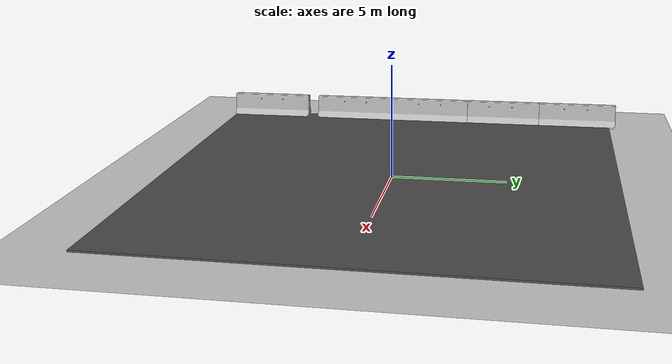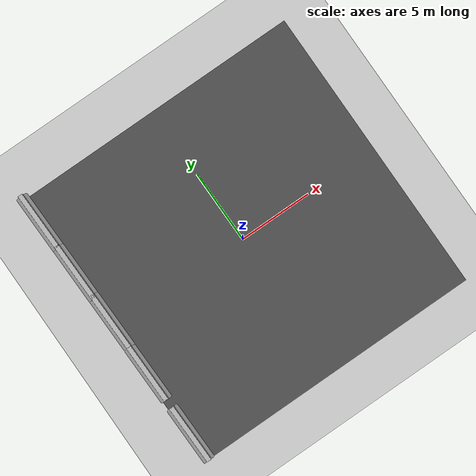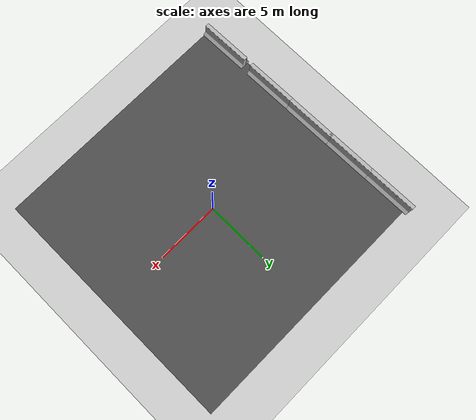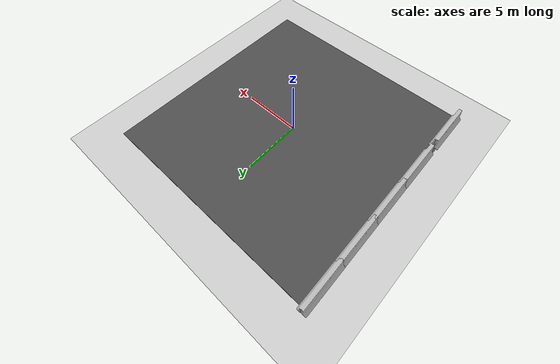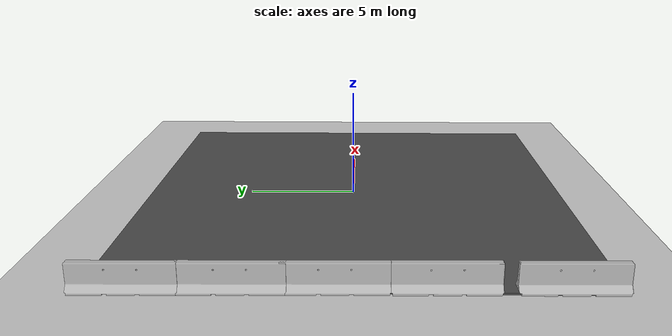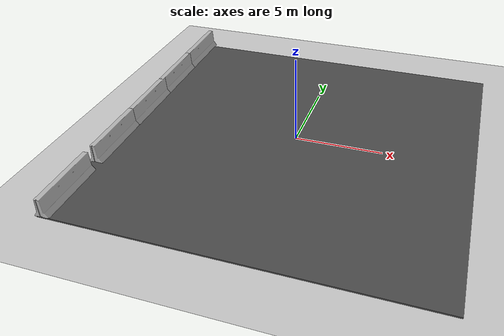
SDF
<sdf version="1.6">
 <world name="default">
  <model name="ground_plane">
   <static>1</static>
   <link name="link">
    <collision name="collision">
     <geometry><plane><normal>0 0 1</normal><size>100 100</size></plane></geometry>
     <surface><friction><ode><mu>100</mu><mu2>50</mu2></ode></friction></surface>
    </collision>
    <visual name="visual">
     <cast_shadows>0</cast_shadows>
     <geometry><plane><normal>0 0 1</normal><size>100 100</size></plane></geometry>
     <material>
      <script><uri>file://media/materials/scripts/gazebo.material</uri><name>Gazebo/Grey</name></script>
     </material>
    </visual>
    <velocity_decay><linear>0</linear><angular>0</angular></velocity_decay>
   </link>
  </model>
  <model name="asphalt_plane">
   <static>1</static>
   <link name="link">
    <collision name="collision"><geometry><box><size>20 20 0.1</size></box></geometry></collision>
    <visual name="visual">
     <cast_shadows>0</cast_shadows>
     <geometry><box><size>20 20 0.1</size></box></geometry>
     <material>
      <script>
       <uri>model://asphalt_plane/materials/scripts</uri>
       <uri>model://asphalt_plane/materials/textures</uri>
       <name>vrc/asphalt</name>
      </script>
     </material>
    </visual>
    <velocity_decay><linear>0</linear><angular>0</angular></velocity_decay>
   </link>
   <pose>0.076733 -0.110379 0 0 -0 0</pose>
  </model>
  <model name="jersey_barrier_8">
   <link name="link">
    <pose>-0.727355 1.16834 0 0 -0 1.58626</pose>
    <visual name="visual">
     <geometry><mesh><uri>model://jersey_barrier/meshes/jersey_barrier.dae</uri></mesh></geometry>
     <material><shader type="pixel"/></material>
    </visual>
    <collision name="upright">
     <pose>0 0 0.5715 0 -0 0</pose>
     <geometry><box><size>4.06542 0.3063 1.143</size></box></geometry>
     <surface>
      <friction>
       <ode><mu>1</mu><mu2>1</mu2><fdir1>0 0 0</fdir1><slip1>0</slip1><slip2>0</slip2></ode>
       <torsional>
        <coefficient>1</coefficient>
        <patch_radius>0</patch_radius>
        <surface_radius>0</surface_radius>
        <use_patch_radius>1</use_patch_radius>
        <ode><slip>0</slip></ode>
       </torsional>
      </friction>
      <bounce><restitution_coefficient>0</restitution_coefficient><threshold>1e+06</threshold></bounce>
      <contact>
       <collide_without_contact>0</collide_without_contact>
       <collide_without_contact_bitmask>1</collide_without_contact_bitmask>
       <collide_bitmask>1</collide_bitmask>
       <ode>
        <soft_cfm>0</soft_cfm>
        <soft_erp>0.2</soft_erp>
        <kp>1e+13</kp>
        <kd>1</kd>
        <max_vel>0.01</max_vel>
        <min_depth>0</min_depth>
       </ode>
       <bullet>
        <split_impulse>1</split_impulse>
        <split_impulse_penetration_threshold>-0.01</split_impulse_penetration_threshold>
        <soft_cfm>0</soft_cfm>
        <soft_erp>0.2</soft_erp>
        <kp>1e+13</kp>
        <kd>1</kd>
       </bullet>
      </contact>
     </surface>
    </collision>
    <collision name="base">
     <pose>0 0 0.032258 0 -0 0</pose>
     <geometry><box><size>4.06542 0.8107 0.064516</size></box></geometry>
     <surface>
      <friction>
       <ode><mu>1</mu><mu2>1</mu2><fdir1>0 0 0</fdir1><slip1>0</slip1><slip2>0</slip2></ode>
       <torsional>
        <coefficient>1</coefficient>
        <patch_radius>0</patch_radius>
        <surface_radius>0</surface_radius>
        <use_patch_radius>1</use_patch_radius>
        <ode><slip>0</slip></ode>
       </torsional>
      </friction>
      <bounce><restitution_coefficient>0</restitution_coefficient><threshold>1e+06</threshold></bounce>
      <contact>
       <collide_without_contact>0</collide_without_contact>
       <collide_without_contact_bitmask>1</collide_without_contact_bitmask>
       <collide_bitmask>1</collide_bitmask>
       <ode>
        <soft_cfm>0</soft_cfm>
        <soft_erp>0.2</soft_erp>
        <kp>1e+13</kp>
        <kd>1</kd>
        <max_vel>0.01</max_vel>
        <min_depth>0</min_depth>
       </ode>
       <bullet>
        <split_impulse>1</split_impulse>
        <split_impulse_penetration_threshold>-0.01</split_impulse_penetration_threshold>
        <soft_cfm>0</soft_cfm>
        <soft_erp>0.2</soft_erp>
        <kp>1e+13</kp>
        <kd>1</kd>
       </bullet>
      </contact>
     </surface>
    </collision>
    <collision name="base2">
     <pose>0 0 0.1 0 -0 0</pose>
     <geometry><box><size>4.06542 0.65 0.1</size></box></geometry>
     <surface>
      <friction>
       <ode><mu>1</mu><mu2>1</mu2><fdir1>0 0 0</fdir1><slip1>0</slip1><slip2>0</slip2></ode>
       <torsional>
        <coefficient>1</coefficient>
        <patch_radius>0</patch_radius>
        <surface_radius>0</surface_radius>
        <use_patch_radius>1</use_patch_radius>
        <ode><slip>0</slip></ode>
       </torsional>
      </friction>
      <bounce><restitution_coefficient>0</restitution_coefficient><threshold>1e+06</threshold></bounce>
      <contact>
       <collide_without_contact>0</collide_without_contact>
       <collide_without_contact_bitmask>1</collide_without_contact_bitmask>
       <collide_bitmask>1</collide_bitmask>
       <ode>
        <soft_cfm>0</soft_cfm>
        <soft_erp>0.2</soft_erp>
        <kp>1e+13</kp>
        <kd>1</kd>
        <max_vel>0.01</max_vel>
        <min_depth>0</min_depth>
       </ode>
       <bullet>
        <split_impulse>1</split_impulse>
        <split_impulse_penetration_threshold>-0.01</split_impulse_penetration_threshold>
        <soft_cfm>0</soft_cfm>
        <soft_erp>0.2</soft_erp>
        <kp>1e+13</kp>
        <kd>1</kd>
       </bullet>
      </contact>
     </surface>
    </collision>
    <collision name="base3">
     <pose>0 0 0.2 0 -0 0</pose>
     <geometry><box><size>4.06542 0.5 0.1</size></box></geometry>
     <surface>
      <friction>
       <ode><mu>1</mu><mu2>1</mu2><fdir1>0 0 0</fdir1><slip1>0</slip1><slip2>0</slip2></ode>
       <torsional>
        <coefficient>1</coefficient>
        <patch_radius>0</patch_radius>
        <surface_radius>0</surface_radius>
        <use_patch_radius>1</use_patch_radius>
        <ode><slip>0</slip></ode>
       </torsional>
      </friction>
      <bounce><restitution_coefficient>0</restitution_coefficient><threshold>1e+06</threshold></bounce>
      <contact>
       <collide_without_contact>0</collide_without_contact>
       <collide_without_contact_bitmask>1</collide_without_contact_bitmask>
       <collide_bitmask>1</collide_bitmask>
       <ode>
        <soft_cfm>0</soft_cfm>
        <soft_erp>0.2</soft_erp>
        <kp>1e+13</kp>
        <kd>1</kd>
        <max_vel>0.01</max_vel>
        <min_depth>0</min_depth>
       </ode>
       <bullet>
        <split_impulse>1</split_impulse>
        <split_impulse_penetration_threshold>-0.01</split_impulse_penetration_threshold>
        <soft_cfm>0</soft_cfm>
        <soft_erp>0.2</soft_erp>
        <kp>1e+13</kp>
        <kd>1</kd>
       </bullet>
      </contact>
     </surface>
    </collision>
    <collision name="left-angle">
     <pose>0 -0.224 0.2401 0.9 -0 0</pose>
     <geometry><box><size>4.06542 0.5 0.064516</size></box></geometry>
     <surface>
      <friction>
       <ode><mu>1</mu><mu2>1</mu2><fdir1>0 0 0</fdir1><slip1>0</slip1><slip2>0</slip2></ode>
       <torsional>
        <coefficient>1</coefficient>
        <patch_radius>0</patch_radius>
        <surface_radius>0</surface_radius>
        <use_patch_radius>1</use_patch_radius>
        <ode><slip>0</slip></ode>
       </torsional>
      </friction>
      <bounce><restitution_coefficient>0</restitution_coefficient><threshold>1e+06</threshold></bounce>
      <contact>
       <collide_without_contact>0</collide_without_contact>
       <collide_without_contact_bitmask>1</collide_without_contact_bitmask>
       <collide_bitmask>1</collide_bitmask>
       <ode>
        <soft_cfm>0</soft_cfm>
        <soft_erp>0.2</soft_erp>
        <kp>1e+13</kp>
        <kd>1</kd>
        <max_vel>0.01</max_vel>
        <min_depth>0</min_depth>
       </ode>
       <bullet>
        <split_impulse>1</split_impulse>
        <split_impulse_penetration_threshold>-0.01</split_impulse_penetration_threshold>
        <soft_cfm>0</soft_cfm>
        <soft_erp>0.2</soft_erp>
        <kp>1e+13</kp>
        <kd>1</kd>
       </bullet>
      </contact>
     </surface>
    </collision>
    <collision name="right-angle">
     <pose>0 0.224 0.2401 -0.9 0 0</pose>
     <geometry><box><size>4.06542 0.5 0.064516</size></box></geometry>
     <surface>
      <friction>
       <ode><mu>1</mu><mu2>1</mu2><fdir1>0 0 0</fdir1><slip1>0</slip1><slip2>0</slip2></ode>
       <torsional>
        <coefficient>1</coefficient>
        <patch_radius>0</patch_radius>
        <surface_radius>0</surface_radius>
        <use_patch_radius>1</use_patch_radius>
        <ode><slip>0</slip></ode>
       </torsional>
      </friction>
      <bounce><restitution_coefficient>0</restitution_coefficient><threshold>1e+06</threshold></bounce>
      <contact>
       <collide_without_contact>0</collide_without_contact>
       <collide_without_contact_bitmask>1</collide_without_contact_bitmask>
       <collide_bitmask>1</collide_bitmask>
       <ode>
        <soft_cfm>0</soft_cfm>
        <soft_erp>0.2</soft_erp>
        <kp>1e+13</kp>
        <kd>1</kd>
        <max_vel>0.01</max_vel>
        <min_depth>0</min_depth>
       </ode>
       <bullet>
        <split_impulse>1</split_impulse>
        <split_impulse_penetration_threshold>-0.01</split_impulse_penetration_threshold>
        <soft_cfm>0</soft_cfm>
        <soft_erp>0.2</soft_erp>
        <kp>1e+13</kp>
        <kd>1</kd>
       </bullet>
      </contact>
     </surface>
    </collision>
   </link>
   <static>1</static>
   <pose>-9.12908 6.99437 0 0 -0 0</pose>
  </model>
  <model name="jersey_barrier_8_clone">
   <link name="link">
    <pose>-0.727355 1.16834 0 0 -0 1.58626</pose>
    <visual name="visual">
     <geometry><mesh><uri>model://jersey_barrier/meshes/jersey_barrier.dae</uri></mesh></geometry>
     <material><shader type="pixel"/></material>
    </visual>
    <collision name="upright">
     <pose>0 0 0.5715 0 -0 0</pose>
     <geometry><box><size>4.06542 0.3063 1.143</size></box></geometry>
     <surface>
      <friction>
       <ode><mu>1</mu><mu2>1</mu2><fdir1>0 0 0</fdir1><slip1>0</slip1><slip2>0</slip2></ode>
       <torsional>
        <coefficient>1</coefficient>
        <patch_radius>0</patch_radius>
        <surface_radius>0</surface_radius>
        <use_patch_radius>1</use_patch_radius>
        <ode><slip>0</slip></ode>
       </torsional>
      </friction>
      <bounce><restitution_coefficient>0</restitution_coefficient><threshold>1e+06</threshold></bounce>
      <contact>
       <collide_without_contact>0</collide_without_contact>
       <collide_without_contact_bitmask>1</collide_without_contact_bitmask>
       <collide_bitmask>1</collide_bitmask>
       <ode>
        <soft_cfm>0</soft_cfm>
        <soft_erp>0.2</soft_erp>
        <kp>1e+13</kp>
        <kd>1</kd>
        <max_vel>0.01</max_vel>
        <min_depth>0</min_depth>
       </ode>
       <bullet>
        <split_impulse>1</split_impulse>
        <split_impulse_penetration_threshold>-0.01</split_impulse_penetration_threshold>
        <soft_cfm>0</soft_cfm>
        <soft_erp>0.2</soft_erp>
        <kp>1e+13</kp>
        <kd>1</kd>
       </bullet>
      </contact>
     </surface>
    </collision>
    <collision name="base">
     <pose>0 0 0.032258 0 -0 0</pose>
     <geometry><box><size>4.06542 0.8107 0.064516</size></box></geometry>
     <surface>
      <friction>
       <ode><mu>1</mu><mu2>1</mu2><fdir1>0 0 0</fdir1><slip1>0</slip1><slip2>0</slip2></ode>
       <torsional>
        <coefficient>1</coefficient>
        <patch_radius>0</patch_radius>
        <surface_radius>0</surface_radius>
        <use_patch_radius>1</use_patch_radius>
        <ode><slip>0</slip></ode>
       </torsional>
      </friction>
      <bounce><restitution_coefficient>0</restitution_coefficient><threshold>1e+06</threshold></bounce>
      <contact>
       <collide_without_contact>0</collide_without_contact>
       <collide_without_contact_bitmask>1</collide_without_contact_bitmask>
       <collide_bitmask>1</collide_bitmask>
       <ode>
        <soft_cfm>0</soft_cfm>
        <soft_erp>0.2</soft_erp>
        <kp>1e+13</kp>
        <kd>1</kd>
        <max_vel>0.01</max_vel>
        <min_depth>0</min_depth>
       </ode>
       <bullet>
        <split_impulse>1</split_impulse>
        <split_impulse_penetration_threshold>-0.01</split_impulse_penetration_threshold>
        <soft_cfm>0</soft_cfm>
        <soft_erp>0.2</soft_erp>
        <kp>1e+13</kp>
        <kd>1</kd>
       </bullet>
      </contact>
     </surface>
    </collision>
    <collision name="base2">
     <pose>0 0 0.1 0 -0 0</pose>
     <geometry><box><size>4.06542 0.65 0.1</size></box></geometry>
     <surface>
      <friction>
       <ode><mu>1</mu><mu2>1</mu2><fdir1>0 0 0</fdir1><slip1>0</slip1><slip2>0</slip2></ode>
       <torsional>
        <coefficient>1</coefficient>
        <patch_radius>0</patch_radius>
        <surface_radius>0</surface_radius>
        <use_patch_radius>1</use_patch_radius>
        <ode><slip>0</slip></ode>
       </torsional>
      </friction>
      <bounce><restitution_coefficient>0</restitution_coefficient><threshold>1e+06</threshold></bounce>
      <contact>
       <collide_without_contact>0</collide_without_contact>
       <collide_without_contact_bitmask>1</collide_without_contact_bitmask>
       <collide_bitmask>1</collide_bitmask>
       <ode>
        <soft_cfm>0</soft_cfm>
        <soft_erp>0.2</soft_erp>
        <kp>1e+13</kp>
        <kd>1</kd>
        <max_vel>0.01</max_vel>
        <min_depth>0</min_depth>
       </ode>
       <bullet>
        <split_impulse>1</split_impulse>
        <split_impulse_penetration_threshold>-0.01</split_impulse_penetration_threshold>
        <soft_cfm>0</soft_cfm>
        <soft_erp>0.2</soft_erp>
        <kp>1e+13</kp>
        <kd>1</kd>
       </bullet>
      </contact>
     </surface>
    </collision>
    <collision name="base3">
     <pose>0 0 0.2 0 -0 0</pose>
     <geometry><box><size>4.06542 0.5 0.1</size></box></geometry>
     <surface>
      <friction>
       <ode><mu>1</mu><mu2>1</mu2><fdir1>0 0 0</fdir1><slip1>0</slip1><slip2>0</slip2></ode>
       <torsional>
        <coefficient>1</coefficient>
        <patch_radius>0</patch_radius>
        <surface_radius>0</surface_radius>
        <use_patch_radius>1</use_patch_radius>
        <ode><slip>0</slip></ode>
       </torsional>
      </friction>
      <bounce><restitution_coefficient>0</restitution_coefficient><threshold>1e+06</threshold></bounce>
      <contact>
       <collide_without_contact>0</collide_without_contact>
       <collide_without_contact_bitmask>1</collide_without_contact_bitmask>
       <collide_bitmask>1</collide_bitmask>
       <ode>
        <soft_cfm>0</soft_cfm>
        <soft_erp>0.2</soft_erp>
        <kp>1e+13</kp>
        <kd>1</kd>
        <max_vel>0.01</max_vel>
        <min_depth>0</min_depth>
       </ode>
       <bullet>
        <split_impulse>1</split_impulse>
        <split_impulse_penetration_threshold>-0.01</split_impulse_penetration_threshold>
        <soft_cfm>0</soft_cfm>
        <soft_erp>0.2</soft_erp>
        <kp>1e+13</kp>
        <kd>1</kd>
       </bullet>
      </contact>
     </surface>
    </collision>
    <collision name="left-angle">
     <pose>0 -0.224 0.2401 0.9 -0 0</pose>
     <geometry><box><size>4.06542 0.5 0.064516</size></box></geometry>
     <surface>
      <friction>
       <ode><mu>1</mu><mu2>1</mu2><fdir1>0 0 0</fdir1><slip1>0</slip1><slip2>0</slip2></ode>
       <torsional>
        <coefficient>1</coefficient>
        <patch_radius>0</patch_radius>
        <surface_radius>0</surface_radius>
        <use_patch_radius>1</use_patch_radius>
        <ode><slip>0</slip></ode>
       </torsional>
      </friction>
      <bounce><restitution_coefficient>0</restitution_coefficient><threshold>1e+06</threshold></bounce>
      <contact>
       <collide_without_contact>0</collide_without_contact>
       <collide_without_contact_bitmask>1</collide_without_contact_bitmask>
       <collide_bitmask>1</collide_bitmask>
       <ode>
        <soft_cfm>0</soft_cfm>
        <soft_erp>0.2</soft_erp>
        <kp>1e+13</kp>
        <kd>1</kd>
        <max_vel>0.01</max_vel>
        <min_depth>0</min_depth>
       </ode>
       <bullet>
        <split_impulse>1</split_impulse>
        <split_impulse_penetration_threshold>-0.01</split_impulse_penetration_threshold>
        <soft_cfm>0</soft_cfm>
        <soft_erp>0.2</soft_erp>
        <kp>1e+13</kp>
        <kd>1</kd>
       </bullet>
      </contact>
     </surface>
    </collision>
    <collision name="right-angle">
     <pose>0 0.224 0.2401 -0.9 0 0</pose>
     <geometry><box><size>4.06542 0.5 0.064516</size></box></geometry>
     <surface>
      <friction>
       <ode><mu>1</mu><mu2>1</mu2><fdir1>0 0 0</fdir1><slip1>0</slip1><slip2>0</slip2></ode>
       <torsional>
        <coefficient>1</coefficient>
        <patch_radius>0</patch_radius>
        <surface_radius>0</surface_radius>
        <use_patch_radius>1</use_patch_radius>
        <ode><slip>0</slip></ode>
       </torsional>
      </friction>
      <bounce><restitution_coefficient>0</restitution_coefficient><threshold>1e+06</threshold></bounce>
      <contact>
       <collide_without_contact>0</collide_without_contact>
       <collide_without_contact_bitmask>1</collide_without_contact_bitmask>
       <collide_bitmask>1</collide_bitmask>
       <ode>
        <soft_cfm>0</soft_cfm>
        <soft_erp>0.2</soft_erp>
        <kp>1e+13</kp>
        <kd>1</kd>
        <max_vel>0.01</max_vel>
        <min_depth>0</min_depth>
       </ode>
       <bullet>
        <split_impulse>1</split_impulse>
        <split_impulse_penetration_threshold>-0.01</split_impulse_penetration_threshold>
        <soft_cfm>0</soft_cfm>
        <soft_erp>0.2</soft_erp>
        <kp>1e+13</kp>
        <kd>1</kd>
       </bullet>
      </contact>
     </surface>
    </collision>
   </link>
   <static>1</static>
   <pose>-9.06253 3.08758 0 0 -0 0</pose>
  </model>
  <model name="jersey_barrier_8_clone_0">
   <link name="link">
    <pose>-0.727355 1.16834 0 0 -0 1.58626</pose>
    <visual name="visual">
     <geometry><mesh><uri>model://jersey_barrier/meshes/jersey_barrier.dae</uri></mesh></geometry>
     <material><shader type="pixel"/></material>
    </visual>
    <collision name="upright">
     <pose>0 0 0.5715 0 -0 0</pose>
     <geometry><box><size>4.06542 0.3063 1.143</size></box></geometry>
     <surface>
      <friction>
       <ode><mu>1</mu><mu2>1</mu2><fdir1>0 0 0</fdir1><slip1>0</slip1><slip2>0</slip2></ode>
       <torsional>
        <coefficient>1</coefficient>
        <patch_radius>0</patch_radius>
        <surface_radius>0</surface_radius>
        <use_patch_radius>1</use_patch_radius>
        <ode><slip>0</slip></ode>
       </torsional>
      </friction>
      <bounce><restitution_coefficient>0</restitution_coefficient><threshold>1e+06</threshold></bounce>
      <contact>
       <collide_without_contact>0</collide_without_contact>
       <collide_without_contact_bitmask>1</collide_without_contact_bitmask>
       <collide_bitmask>1</collide_bitmask>
       <ode>
        <soft_cfm>0</soft_cfm>
        <soft_erp>0.2</soft_erp>
        <kp>1e+13</kp>
        <kd>1</kd>
        <max_vel>0.01</max_vel>
        <min_depth>0</min_depth>
       </ode>
       <bullet>
        <split_impulse>1</split_impulse>
        <split_impulse_penetration_threshold>-0.01</split_impulse_penetration_threshold>
        <soft_cfm>0</soft_cfm>
        <soft_erp>0.2</soft_erp>
        <kp>1e+13</kp>
        <kd>1</kd>
       </bullet>
      </contact>
     </surface>
    </collision>
    <collision name="base">
     <pose>0 0 0.032258 0 -0 0</pose>
     <geometry><box><size>4.06542 0.8107 0.064516</size></box></geometry>
     <surface>
      <friction>
       <ode><mu>1</mu><mu2>1</mu2><fdir1>0 0 0</fdir1><slip1>0</slip1><slip2>0</slip2></ode>
       <torsional>
        <coefficient>1</coefficient>
        <patch_radius>0</patch_radius>
        <surface_radius>0</surface_radius>
        <use_patch_radius>1</use_patch_radius>
        <ode><slip>0</slip></ode>
       </torsional>
      </friction>
      <bounce><restitution_coefficient>0</restitution_coefficient><threshold>1e+06</threshold></bounce>
      <contact>
       <collide_without_contact>0</collide_without_contact>
       <collide_without_contact_bitmask>1</collide_without_contact_bitmask>
       <collide_bitmask>1</collide_bitmask>
       <ode>
        <soft_cfm>0</soft_cfm>
        <soft_erp>0.2</soft_erp>
        <kp>1e+13</kp>
        <kd>1</kd>
        <max_vel>0.01</max_vel>
        <min_depth>0</min_depth>
       </ode>
       <bullet>
        <split_impulse>1</split_impulse>
        <split_impulse_penetration_threshold>-0.01</split_impulse_penetration_threshold>
        <soft_cfm>0</soft_cfm>
        <soft_erp>0.2</soft_erp>
        <kp>1e+13</kp>
        <kd>1</kd>
       </bullet>
      </contact>
     </surface>
    </collision>
    <collision name="base2">
     <pose>0 0 0.1 0 -0 0</pose>
     <geometry><box><size>4.06542 0.65 0.1</size></box></geometry>
     <surface>
      <friction>
       <ode><mu>1</mu><mu2>1</mu2><fdir1>0 0 0</fdir1><slip1>0</slip1><slip2>0</slip2></ode>
       <torsional>
        <coefficient>1</coefficient>
        <patch_radius>0</patch_radius>
        <surface_radius>0</surface_radius>
        <use_patch_radius>1</use_patch_radius>
        <ode><slip>0</slip></ode>
       </torsional>
      </friction>
      <bounce><restitution_coefficient>0</restitution_coefficient><threshold>1e+06</threshold></bounce>
      <contact>
       <collide_without_contact>0</collide_without_contact>
       <collide_without_contact_bitmask>1</collide_without_contact_bitmask>
       <collide_bitmask>1</collide_bitmask>
       <ode>
        <soft_cfm>0</soft_cfm>
        <soft_erp>0.2</soft_erp>
        <kp>1e+13</kp>
        <kd>1</kd>
        <max_vel>0.01</max_vel>
        <min_depth>0</min_depth>
       </ode>
       <bullet>
        <split_impulse>1</split_impulse>
        <split_impulse_penetration_threshold>-0.01</split_impulse_penetration_threshold>
        <soft_cfm>0</soft_cfm>
        <soft_erp>0.2</soft_erp>
        <kp>1e+13</kp>
        <kd>1</kd>
       </bullet>
      </contact>
     </surface>
    </collision>
    <collision name="base3">
     <pose>0 0 0.2 0 -0 0</pose>
     <geometry><box><size>4.06542 0.5 0.1</size></box></geometry>
     <surface>
      <friction>
       <ode><mu>1</mu><mu2>1</mu2><fdir1>0 0 0</fdir1><slip1>0</slip1><slip2>0</slip2></ode>
       <torsional>
        <coefficient>1</coefficient>
        <patch_radius>0</patch_radius>
        <surface_radius>0</surface_radius>
        <use_patch_radius>1</use_patch_radius>
        <ode><slip>0</slip></ode>
       </torsional>
      </friction>
      <bounce><restitution_coefficient>0</restitution_coefficient><threshold>1e+06</threshold></bounce>
      <contact>
       <collide_without_contact>0</collide_without_contact>
       <collide_without_contact_bitmask>1</collide_without_contact_bitmask>
       <collide_bitmask>1</collide_bitmask>
       <ode>
        <soft_cfm>0</soft_cfm>
        <soft_erp>0.2</soft_erp>
        <kp>1e+13</kp>
        <kd>1</kd>
        <max_vel>0.01</max_vel>
        <min_depth>0</min_depth>
       </ode>
       <bullet>
        <split_impulse>1</split_impulse>
        <split_impulse_penetration_threshold>-0.01</split_impulse_penetration_threshold>
        <soft_cfm>0</soft_cfm>
        <soft_erp>0.2</soft_erp>
        <kp>1e+13</kp>
        <kd>1</kd>
       </bullet>
      </contact>
     </surface>
    </collision>
    <collision name="left-angle">
     <pose>0 -0.224 0.2401 0.9 -0 0</pose>
     <geometry><box><size>4.06542 0.5 0.064516</size></box></geometry>
     <surface>
      <friction>
       <ode><mu>1</mu><mu2>1</mu2><fdir1>0 0 0</fdir1><slip1>0</slip1><slip2>0</slip2></ode>
       <torsional>
        <coefficient>1</coefficient>
        <patch_radius>0</patch_radius>
        <surface_radius>0</surface_radius>
        <use_patch_radius>1</use_patch_radius>
        <ode><slip>0</slip></ode>
       </torsional>
      </friction>
      <bounce><restitution_coefficient>0</restitution_coefficient><threshold>1e+06</threshold></bounce>
      <contact>
       <collide_without_contact>0</collide_without_contact>
       <collide_without_contact_bitmask>1</collide_without_contact_bitmask>
       <collide_bitmask>1</collide_bitmask>
       <ode>
        <soft_cfm>0</soft_cfm>
        <soft_erp>0.2</soft_erp>
        <kp>1e+13</kp>
        <kd>1</kd>
        <max_vel>0.01</max_vel>
        <min_depth>0</min_depth>
       </ode>
       <bullet>
        <split_impulse>1</split_impulse>
        <split_impulse_penetration_threshold>-0.01</split_impulse_penetration_threshold>
        <soft_cfm>0</soft_cfm>
        <soft_erp>0.2</soft_erp>
        <kp>1e+13</kp>
        <kd>1</kd>
       </bullet>
      </contact>
     </surface>
    </collision>
    <collision name="right-angle">
     <pose>0 0.224 0.2401 -0.9 0 0</pose>
     <geometry><box><size>4.06542 0.5 0.064516</size></box></geometry>
     <surface>
      <friction>
       <ode><mu>1</mu><mu2>1</mu2><fdir1>0 0 0</fdir1><slip1>0</slip1><slip2>0</slip2></ode>
       <torsional>
        <coefficient>1</coefficient>
        <patch_radius>0</patch_radius>
        <surface_radius>0</surface_radius>
        <use_patch_radius>1</use_patch_radius>
        <ode><slip>0</slip></ode>
       </torsional>
      </friction>
      <bounce><restitution_coefficient>0</restitution_coefficient><threshold>1e+06</threshold></bounce>
      <contact>
       <collide_without_contact>0</collide_without_contact>
       <collide_without_contact_bitmask>1</collide_without_contact_bitmask>
       <collide_bitmask>1</collide_bitmask>
       <ode>
        <soft_cfm>0</soft_cfm>
        <soft_erp>0.2</soft_erp>
        <kp>1e+13</kp>
        <kd>1</kd>
        <max_vel>0.01</max_vel>
        <min_depth>0</min_depth>
       </ode>
       <bullet>
        <split_impulse>1</split_impulse>
        <split_impulse_penetration_threshold>-0.01</split_impulse_penetration_threshold>
        <soft_cfm>0</soft_cfm>
        <soft_erp>0.2</soft_erp>
        <kp>1e+13</kp>
        <kd>1</kd>
       </bullet>
      </contact>
     </surface>
    </collision>
   </link>
   <static>1</static>
   <pose>-8.99872 -0.671123 0 0 -0 0</pose>
  </model>
  <model name="jersey_barrier_8_clone_1">
   <link name="link">
    <pose>-0.727355 1.16834 0 0 -0 1.58626</pose>
    <visual name="visual">
     <geometry><mesh><uri>model://jersey_barrier/meshes/jersey_barrier.dae</uri></mesh></geometry>
     <material><shader type="pixel"/></material>
    </visual>
    <collision name="upright">
     <pose>0 0 0.5715 0 -0 0</pose>
     <geometry><box><size>4.06542 0.3063 1.143</size></box></geometry>
     <surface>
      <friction>
       <ode><mu>1</mu><mu2>1</mu2><fdir1>0 0 0</fdir1><slip1>0</slip1><slip2>0</slip2></ode>
       <torsional>
        <coefficient>1</coefficient>
        <patch_radius>0</patch_radius>
        <surface_radius>0</surface_radius>
        <use_patch_radius>1</use_patch_radius>
        <ode><slip>0</slip></ode>
       </torsional>
      </friction>
      <bounce><restitution_coefficient>0</restitution_coefficient><threshold>1e+06</threshold></bounce>
      <contact>
       <collide_without_contact>0</collide_without_contact>
       <collide_without_contact_bitmask>1</collide_without_contact_bitmask>
       <collide_bitmask>1</collide_bitmask>
       <ode>
        <soft_cfm>0</soft_cfm>
        <soft_erp>0.2</soft_erp>
        <kp>1e+13</kp>
        <kd>1</kd>
        <max_vel>0.01</max_vel>
        <min_depth>0</min_depth>
       </ode>
       <bullet>
        <split_impulse>1</split_impulse>
        <split_impulse_penetration_threshold>-0.01</split_impulse_penetration_threshold>
        <soft_cfm>0</soft_cfm>
        <soft_erp>0.2</soft_erp>
        <kp>1e+13</kp>
        <kd>1</kd>
       </bullet>
      </contact>
     </surface>
    </collision>
    <collision name="base">
     <pose>0 0 0.032258 0 -0 0</pose>
     <geometry><box><size>4.06542 0.8107 0.064516</size></box></geometry>
     <surface>
      <friction>
       <ode><mu>1</mu><mu2>1</mu2><fdir1>0 0 0</fdir1><slip1>0</slip1><slip2>0</slip2></ode>
       <torsional>
        <coefficient>1</coefficient>
        <patch_radius>0</patch_radius>
        <surface_radius>0</surface_radius>
        <use_patch_radius>1</use_patch_radius>
        <ode><slip>0</slip></ode>
       </torsional>
      </friction>
      <bounce><restitution_coefficient>0</restitution_coefficient><threshold>1e+06</threshold></bounce>
      <contact>
       <collide_without_contact>0</collide_without_contact>
       <collide_without_contact_bitmask>1</collide_without_contact_bitmask>
       <collide_bitmask>1</collide_bitmask>
       <ode>
        <soft_cfm>0</soft_cfm>
        <soft_erp>0.2</soft_erp>
        <kp>1e+13</kp>
        <kd>1</kd>
        <max_vel>0.01</max_vel>
        <min_depth>0</min_depth>
       </ode>
       <bullet>
        <split_impulse>1</split_impulse>
        <split_impulse_penetration_threshold>-0.01</split_impulse_penetration_threshold>
        <soft_cfm>0</soft_cfm>
        <soft_erp>0.2</soft_erp>
        <kp>1e+13</kp>
        <kd>1</kd>
       </bullet>
      </contact>
     </surface>
    </collision>
    <collision name="base2">
     <pose>0 0 0.1 0 -0 0</pose>
     <geometry><box><size>4.06542 0.65 0.1</size></box></geometry>
     <surface>
      <friction>
       <ode><mu>1</mu><mu2>1</mu2><fdir1>0 0 0</fdir1><slip1>0</slip1><slip2>0</slip2></ode>
       <torsional>
        <coefficient>1</coefficient>
        <patch_radius>0</patch_radius>
        <surface_radius>0</surface_radius>
        <use_patch_radius>1</use_patch_radius>
        <ode><slip>0</slip></ode>
       </torsional>
      </friction>
      <bounce><restitution_coefficient>0</restitution_coefficient><threshold>1e+06</threshold></bounce>
      <contact>
       <collide_without_contact>0</collide_without_contact>
       <collide_without_contact_bitmask>1</collide_without_contact_bitmask>
       <collide_bitmask>1</collide_bitmask>
       <ode>
        <soft_cfm>0</soft_cfm>
        <soft_erp>0.2</soft_erp>
        <kp>1e+13</kp>
        <kd>1</kd>
        <max_vel>0.01</max_vel>
        <min_depth>0</min_depth>
       </ode>
       <bullet>
        <split_impulse>1</split_impulse>
        <split_impulse_penetration_threshold>-0.01</split_impulse_penetration_threshold>
        <soft_cfm>0</soft_cfm>
        <soft_erp>0.2</soft_erp>
        <kp>1e+13</kp>
        <kd>1</kd>
       </bullet>
      </contact>
     </surface>
    </collision>
    <collision name="base3">
     <pose>0 0 0.2 0 -0 0</pose>
     <geometry><box><size>4.06542 0.5 0.1</size></box></geometry>
     <surface>
      <friction>
       <ode><mu>1</mu><mu2>1</mu2><fdir1>0 0 0</fdir1><slip1>0</slip1><slip2>0</slip2></ode>
       <torsional>
        <coefficient>1</coefficient>
        <patch_radius>0</patch_radius>
        <surface_radius>0</surface_radius>
        <use_patch_radius>1</use_patch_radius>
        <ode><slip>0</slip></ode>
       </torsional>
      </friction>
      <bounce><restitution_coefficient>0</restitution_coefficient><threshold>1e+06</threshold></bounce>
      <contact>
       <collide_without_contact>0</collide_without_contact>
       <collide_without_contact_bitmask>1</collide_without_contact_bitmask>
       <collide_bitmask>1</collide_bitmask>
       <ode>
        <soft_cfm>0</soft_cfm>
        <soft_erp>0.2</soft_erp>
        <kp>1e+13</kp>
        <kd>1</kd>
        <max_vel>0.01</max_vel>
        <min_depth>0</min_depth>
       </ode>
       <bullet>
        <split_impulse>1</split_impulse>
        <split_impulse_penetration_threshold>-0.01</split_impulse_penetration_threshold>
        <soft_cfm>0</soft_cfm>
        <soft_erp>0.2</soft_erp>
        <kp>1e+13</kp>
        <kd>1</kd>
       </bullet>
      </contact>
     </surface>
    </collision>
    <collision name="left-angle">
     <pose>0 -0.224 0.2401 0.9 -0 0</pose>
     <geometry><box><size>4.06542 0.5 0.064516</size></box></geometry>
     <surface>
      <friction>
       <ode><mu>1</mu><mu2>1</mu2><fdir1>0 0 0</fdir1><slip1>0</slip1><slip2>0</slip2></ode>
       <torsional>
        <coefficient>1</coefficient>
        <patch_radius>0</patch_radius>
        <surface_radius>0</surface_radius>
        <use_patch_radius>1</use_patch_radius>
        <ode><slip>0</slip></ode>
       </torsional>
      </friction>
      <bounce><restitution_coefficient>0</restitution_coefficient><threshold>1e+06</threshold></bounce>
      <contact>
       <collide_without_contact>0</collide_without_contact>
       <collide_without_contact_bitmask>1</collide_without_contact_bitmask>
       <collide_bitmask>1</collide_bitmask>
       <ode>
        <soft_cfm>0</soft_cfm>
        <soft_erp>0.2</soft_erp>
        <kp>1e+13</kp>
        <kd>1</kd>
        <max_vel>0.01</max_vel>
        <min_depth>0</min_depth>
       </ode>
       <bullet>
        <split_impulse>1</split_impulse>
        <split_impulse_penetration_threshold>-0.01</split_impulse_penetration_threshold>
        <soft_cfm>0</soft_cfm>
        <soft_erp>0.2</soft_erp>
        <kp>1e+13</kp>
        <kd>1</kd>
       </bullet>
      </contact>
     </surface>
    </collision>
    <collision name="right-angle">
     <pose>0 0.224 0.2401 -0.9 0 0</pose>
     <geometry><box><size>4.06542 0.5 0.064516</size></box></geometry>
     <surface>
      <friction>
       <ode><mu>1</mu><mu2>1</mu2><fdir1>0 0 0</fdir1><slip1>0</slip1><slip2>0</slip2></ode>
       <torsional>
        <coefficient>1</coefficient>
        <patch_radius>0</patch_radius>
        <surface_radius>0</surface_radius>
        <use_patch_radius>1</use_patch_radius>
        <ode><slip>0</slip></ode>
       </torsional>
      </friction>
      <bounce><restitution_coefficient>0</restitution_coefficient><threshold>1e+06</threshold></bounce>
      <contact>
       <collide_without_contact>0</collide_without_contact>
       <collide_without_contact_bitmask>1</collide_without_contact_bitmask>
       <collide_bitmask>1</collide_bitmask>
       <ode>
        <soft_cfm>0</soft_cfm>
        <soft_erp>0.2</soft_erp>
        <kp>1e+13</kp>
        <kd>1</kd>
        <max_vel>0.01</max_vel>
        <min_depth>0</min_depth>
       </ode>
       <bullet>
        <split_impulse>1</split_impulse>
        <split_impulse_penetration_threshold>-0.01</split_impulse_penetration_threshold>
        <soft_cfm>0</soft_cfm>
        <soft_erp>0.2</soft_erp>
        <kp>1e+13</kp>
        <kd>1</kd>
       </bullet>
      </contact>
     </surface>
    </collision>
   </link>
   <static>1</static>
   <pose>-8.95011 -4.69718 0 0 -0 0</pose>
  </model>
  <model name="jersey_barrier_8_clone_3">
   <link name="link">
    <pose>-0.727355 1.16834 0 0 -0 1.58626</pose>
    <visual name="visual">
     <geometry><mesh><uri>model://jersey_barrier/meshes/jersey_barrier.dae</uri></mesh></geometry>
     <material><shader type="pixel"/></material>
    </visual>
    <collision name="upright">
     <pose>0 0 0.5715 0 -0 0</pose>
     <geometry><box><size>4.06542 0.3063 1.143</size></box></geometry>
     <surface>
      <friction>
       <ode><mu>1</mu><mu2>1</mu2><fdir1>0 0 0</fdir1><slip1>0</slip1><slip2>0</slip2></ode>
       <torsional>
        <coefficient>1</coefficient>
        <patch_radius>0</patch_radius>
        <surface_radius>0</surface_radius>
        <use_patch_radius>1</use_patch_radius>
        <ode><slip>0</slip></ode>
       </torsional>
      </friction>
      <bounce><restitution_coefficient>0</restitution_coefficient><threshold>1e+06</threshold></bounce>
      <contact>
       <collide_without_contact>0</collide_without_contact>
       <collide_without_contact_bitmask>1</collide_without_contact_bitmask>
       <collide_bitmask>1</collide_bitmask>
       <ode>
        <soft_cfm>0</soft_cfm>
        <soft_erp>0.2</soft_erp>
        <kp>1e+13</kp>
        <kd>1</kd>
        <max_vel>0.01</max_vel>
        <min_depth>0</min_depth>
       </ode>
       <bullet>
        <split_impulse>1</split_impulse>
        <split_impulse_penetration_threshold>-0.01</split_impulse_penetration_threshold>
        <soft_cfm>0</soft_cfm>
        <soft_erp>0.2</soft_erp>
        <kp>1e+13</kp>
        <kd>1</kd>
       </bullet>
      </contact>
     </surface>
    </collision>
    <collision name="base">
     <pose>0 0 0.032258 0 -0 0</pose>
     <geometry><box><size>4.06542 0.8107 0.064516</size></box></geometry>
     <surface>
      <friction>
       <ode><mu>1</mu><mu2>1</mu2><fdir1>0 0 0</fdir1><slip1>0</slip1><slip2>0</slip2></ode>
       <torsional>
        <coefficient>1</coefficient>
        <patch_radius>0</patch_radius>
        <surface_radius>0</surface_radius>
        <use_patch_radius>1</use_patch_radius>
        <ode><slip>0</slip></ode>
       </torsional>
      </friction>
      <bounce><restitution_coefficient>0</restitution_coefficient><threshold>1e+06</threshold></bounce>
      <contact>
       <collide_without_contact>0</collide_without_contact>
       <collide_without_contact_bitmask>1</collide_without_contact_bitmask>
       <collide_bitmask>1</collide_bitmask>
       <ode>
        <soft_cfm>0</soft_cfm>
        <soft_erp>0.2</soft_erp>
        <kp>1e+13</kp>
        <kd>1</kd>
        <max_vel>0.01</max_vel>
        <min_depth>0</min_depth>
       </ode>
       <bullet>
        <split_impulse>1</split_impulse>
        <split_impulse_penetration_threshold>-0.01</split_impulse_penetration_threshold>
        <soft_cfm>0</soft_cfm>
        <soft_erp>0.2</soft_erp>
        <kp>1e+13</kp>
        <kd>1</kd>
       </bullet>
      </contact>
     </surface>
    </collision>
    <collision name="base2">
     <pose>0 0 0.1 0 -0 0</pose>
     <geometry><box><size>4.06542 0.65 0.1</size></box></geometry>
     <surface>
      <friction>
       <ode><mu>1</mu><mu2>1</mu2><fdir1>0 0 0</fdir1><slip1>0</slip1><slip2>0</slip2></ode>
       <torsional>
        <coefficient>1</coefficient>
        <patch_radius>0</patch_radius>
        <surface_radius>0</surface_radius>
        <use_patch_radius>1</use_patch_radius>
        <ode><slip>0</slip></ode>
       </torsional>
      </friction>
      <bounce><restitution_coefficient>0</restitution_coefficient><threshold>1e+06</threshold></bounce>
      <contact>
       <collide_without_contact>0</collide_without_contact>
       <collide_without_contact_bitmask>1</collide_without_contact_bitmask>
       <collide_bitmask>1</collide_bitmask>
       <ode>
        <soft_cfm>0</soft_cfm>
        <soft_erp>0.2</soft_erp>
        <kp>1e+13</kp>
        <kd>1</kd>
        <max_vel>0.01</max_vel>
        <min_depth>0</min_depth>
       </ode>
       <bullet>
        <split_impulse>1</split_impulse>
        <split_impulse_penetration_threshold>-0.01</split_impulse_penetration_threshold>
        <soft_cfm>0</soft_cfm>
        <soft_erp>0.2</soft_erp>
        <kp>1e+13</kp>
        <kd>1</kd>
       </bullet>
      </contact>
     </surface>
    </collision>
    <collision name="base3">
     <pose>0 0 0.2 0 -0 0</pose>
     <geometry><box><size>4.06542 0.5 0.1</size></box></geometry>
     <surface>
      <friction>
       <ode><mu>1</mu><mu2>1</mu2><fdir1>0 0 0</fdir1><slip1>0</slip1><slip2>0</slip2></ode>
       <torsional>
        <coefficient>1</coefficient>
        <patch_radius>0</patch_radius>
        <surface_radius>0</surface_radius>
        <use_patch_radius>1</use_patch_radius>
        <ode><slip>0</slip></ode>
       </torsional>
      </friction>
      <bounce><restitution_coefficient>0</restitution_coefficient><threshold>1e+06</threshold></bounce>
      <contact>
       <collide_without_contact>0</collide_without_contact>
       <collide_without_contact_bitmask>1</collide_without_contact_bitmask>
       <collide_bitmask>1</collide_bitmask>
       <ode>
        <soft_cfm>0</soft_cfm>
        <soft_erp>0.2</soft_erp>
        <kp>1e+13</kp>
        <kd>1</kd>
        <max_vel>0.01</max_vel>
        <min_depth>0</min_depth>
       </ode>
       <bullet>
        <split_impulse>1</split_impulse>
        <split_impulse_penetration_threshold>-0.01</split_impulse_penetration_threshold>
        <soft_cfm>0</soft_cfm>
        <soft_erp>0.2</soft_erp>
        <kp>1e+13</kp>
        <kd>1</kd>
       </bullet>
      </contact>
     </surface>
    </collision>
    <collision name="left-angle">
     <pose>0 -0.224 0.2401 0.9 -0 0</pose>
     <geometry><box><size>4.06542 0.5 0.064516</size></box></geometry>
     <surface>
      <friction>
       <ode><mu>1</mu><mu2>1</mu2><fdir1>0 0 0</fdir1><slip1>0</slip1><slip2>0</slip2></ode>
       <torsional>
        <coefficient>1</coefficient>
        <patch_radius>0</patch_radius>
        <surface_radius>0</surface_radius>
        <use_patch_radius>1</use_patch_radius>
        <ode><slip>0</slip></ode>
       </torsional>
      </friction>
      <bounce><restitution_coefficient>0</restitution_coefficient><threshold>1e+06</threshold></bounce>
      <contact>
       <collide_without_contact>0</collide_without_contact>
       <collide_without_contact_bitmask>1</collide_without_contact_bitmask>
       <collide_bitmask>1</collide_bitmask>
       <ode>
        <soft_cfm>0</soft_cfm>
        <soft_erp>0.2</soft_erp>
        <kp>1e+13</kp>
        <kd>1</kd>
        <max_vel>0.01</max_vel>
        <min_depth>0</min_depth>
       </ode>
       <bullet>
        <split_impulse>1</split_impulse>
        <split_impulse_penetration_threshold>-0.01</split_impulse_penetration_threshold>
        <soft_cfm>0</soft_cfm>
        <soft_erp>0.2</soft_erp>
        <kp>1e+13</kp>
        <kd>1</kd>
       </bullet>
      </contact>
     </surface>
    </collision>
    <collision name="right-angle">
     <pose>0 0.224 0.2401 -0.9 0 0</pose>
     <geometry><box><size>4.06542 0.5 0.064516</size></box></geometry>
     <surface>
      <friction>
       <ode><mu>1</mu><mu2>1</mu2><fdir1>0 0 0</fdir1><slip1>0</slip1><slip2>0</slip2></ode>
       <torsional>
        <coefficient>1</coefficient>
        <patch_radius>0</patch_radius>
        <surface_radius>0</surface_radius>
        <use_patch_radius>1</use_patch_radius>
        <ode><slip>0</slip></ode>
       </torsional>
      </friction>
      <bounce><restitution_coefficient>0</restitution_coefficient><threshold>1e+06</threshold></bounce>
      <contact>
       <collide_without_contact>0</collide_without_contact>
       <collide_without_contact_bitmask>1</collide_without_contact_bitmask>
       <collide_bitmask>1</collide_bitmask>
       <ode>
        <soft_cfm>0</soft_cfm>
        <soft_erp>0.2</soft_erp>
        <kp>1e+13</kp>
        <kd>1</kd>
        <max_vel>0.01</max_vel>
        <min_depth>0</min_depth>
       </ode>
       <bullet>
        <split_impulse>1</split_impulse>
        <split_impulse_penetration_threshold>-0.01</split_impulse_penetration_threshold>
        <soft_cfm>0</soft_cfm>
        <soft_erp>0.2</soft_erp>
        <kp>1e+13</kp>
        <kd>1</kd>
       </bullet>
      </contact>
     </surface>
    </collision>
   </link>
   <static>1</static>
   <pose>-8.90084 -9.30548 0 0 -0 0</pose>
  </model>
 </world>
</sdf>
